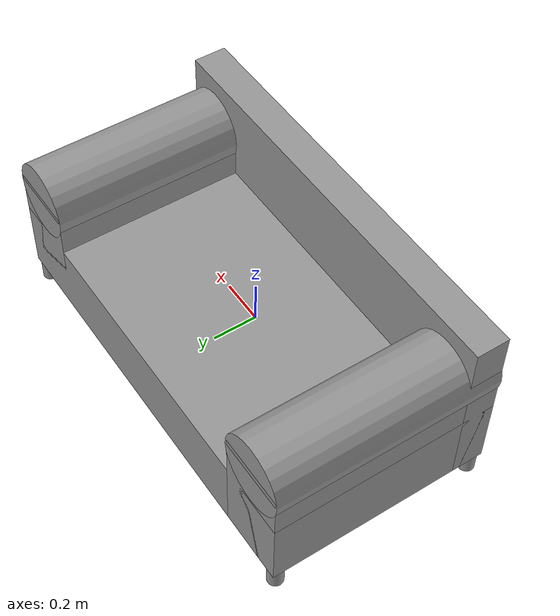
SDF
<?xml version='1.0'?>
<sdf version='1.6'>
  <model name='couch2.0'>
    <link name='link_0'>
      <pose frame=''>0 0.042624 -0.025032 0 -0 0</pose>
      <inertial>
        <mass>0.629351</mass>
        <inertia>
          <ixx>0.0582683</ixx>
          <ixy>0</ixy>
          <ixz>0</ixz>
          <iyy>0.192922</iyy>
          <iyz>0</iyz>
          <izz>0.239546</izz>
        </inertia>
        <pose frame=''>0 0 0 0 -0 0</pose>
      </inertial>
      <gravity>1</gravity>
      <self_collide>0</self_collide>
      <kinematic>0</kinematic>
      <visual name='visual'>
        <pose frame=''>0 0 0 0 -0 0</pose>
        <geometry>
          <box>
            <size>1.88878 1 0.33319</size>
          </box>
        </geometry>
        <material>
          <lighting>1</lighting>
          <script>
            <uri>file://media/materials/scripts/gazebo.material</uri>
            <name>Gazebo/Grey</name>
          </script>
          <shader type='pixel'>
            <normal_map>__default__</normal_map>
          </shader>
          <ambient>0.3 0.3 0.3 1</ambient>
          <diffuse>0.7 0.7 0.7 1</diffuse>
          <specular>0.01 0.01 0.01 1</specular>
          <emissive>0 0 0 1</emissive>
        </material>
        <transparency>0</transparency>
        <cast_shadows>1</cast_shadows>
      </visual>
      <collision name='collision'>
        <laser_retro>0</laser_retro>
        <max_contacts>10</max_contacts>
        <pose frame=''>0 0 0 0 -0 0</pose>
        <geometry>
          <box>
            <size>1.88878 1 0.33319</size>
          </box>
        </geometry>
        <surface>
          <friction>
            <ode>
              <mu>1</mu>
              <mu2>1</mu2>
              <fdir1>0 0 0</fdir1>
              <slip1>0</slip1>
              <slip2>0</slip2>
            </ode>
            <torsional>
              <coefficient>1</coefficient>
              <patch_radius>0</patch_radius>
              <surface_radius>0</surface_radius>
              <use_patch_radius>1</use_patch_radius>
              <ode>
                <slip>0</slip>
              </ode>
            </torsional>
          </friction>
          <bounce>
            <restitution_coefficient>0</restitution_coefficient>
            <threshold>1e+06</threshold>
          </bounce>
          <contact>
            <collide_without_contact>0</collide_without_contact>
            <collide_without_contact_bitmask>1</collide_without_contact_bitmask>
            <collide_bitmask>1</collide_bitmask>
            <ode>
              <soft_cfm>0</soft_cfm>
              <soft_erp>0.2</soft_erp>
              <kp>1e+13</kp>
              <kd>1</kd>
              <max_vel>0.01</max_vel>
              <min_depth>0</min_depth>
            </ode>
            <bullet>
              <split_impulse>1</split_impulse>
              <split_impulse_penetration_threshold>-0.01</split_impulse_penetration_threshold>
              <soft_cfm>0</soft_cfm>
              <soft_erp>0.2</soft_erp>
              <kp>1e+13</kp>
              <kd>1</kd>
            </bullet>
          </contact>
        </surface>
      </collision>
    </link>
    <link name='link_0_clone'>
      <pose frame=''>0 -0.383981 0.182545 0 -0 0</pose>
      <inertial>
        <mass>0.207466</mass>
        <inertia>
          <ixx>0.0100546</ixx>
          <ixy>0</ixy>
          <ixz>0</ixz>
          <iyy>0.0713599</iyy>
          <iyz>0</iyz>
          <izz>0.0620503</izz>
        </inertia>
        <pose frame=''>0 0 0 0 -0 0</pose>
      </inertial>
      <self_collide>0</self_collide>
      <kinematic>0</kinematic>
      <gravity>1</gravity>
      <visual name='visual'>
        <pose frame=''>0 0 0 0 -0 0</pose>
        <geometry>
          <box>
            <size>1.88878 0.146789 0.748345</size>
          </box>
        </geometry>
        <material>
          <lighting>1</lighting>
          <script>
            <uri>file://media/materials/scripts/gazebo.material</uri>
            <name>Gazebo/Grey</name>
          </script>
          <shader type='pixel'>
            <normal_map>__default__</normal_map>
          </shader>
          <ambient>0.3 0.3 0.3 1</ambient>
          <diffuse>0.7 0.7 0.7 1</diffuse>
          <specular>0.01 0.01 0.01 1</specular>
          <emissive>0 0 0 1</emissive>
        </material>
        <transparency>0</transparency>
        <cast_shadows>1</cast_shadows>
      </visual>
      <collision name='collision'>
        <laser_retro>0</laser_retro>
        <max_contacts>10</max_contacts>
        <pose frame=''>0 0 0 0 -0 0</pose>
        <geometry>
          <box>
            <size>1.88878 0.146789 0.748345</size>
          </box>
        </geometry>
        <surface>
          <friction>
            <ode>
              <mu>1</mu>
              <mu2>1</mu2>
              <fdir1>0 0 0</fdir1>
              <slip1>0</slip1>
              <slip2>0</slip2>
            </ode>
            <torsional>
              <coefficient>1</coefficient>
              <patch_radius>0</patch_radius>
              <surface_radius>0</surface_radius>
              <use_patch_radius>1</use_patch_radius>
              <ode>
                <slip>0</slip>
              </ode>
            </torsional>
          </friction>
          <bounce>
            <restitution_coefficient>0</restitution_coefficient>
            <threshold>1e+06</threshold>
          </bounce>
          <contact>
            <collide_without_contact>0</collide_without_contact>
            <collide_without_contact_bitmask>1</collide_without_contact_bitmask>
            <collide_bitmask>1</collide_bitmask>
            <ode>
              <soft_cfm>0</soft_cfm>
              <soft_erp>0.2</soft_erp>
              <kp>1e+13</kp>
              <kd>1</kd>
              <max_vel>0.01</max_vel>
              <min_depth>0</min_depth>
            </ode>
            <bullet>
              <split_impulse>1</split_impulse>
              <split_impulse_penetration_threshold>-0.01</split_impulse_penetration_threshold>
              <soft_cfm>0</soft_cfm>
              <soft_erp>0.2</soft_erp>
              <kp>1e+13</kp>
              <kd>1</kd>
            </bullet>
          </contact>
        </surface>
      </collision>
    </link>
    <link name='link_1'>
      <pose frame=''>-0.909335 -0.422322 -0.235214 0 -0 0</pose>
      <inertial>
        <mass>0.000500743</mass>
        <inertia>
          <ixx>5.85623e-07</ixx>
          <ixy>0</ixy>
          <ixz>0</ixz>
          <iyy>5.85623e-07</iyy>
          <iyz>0</iyz>
          <izz>3.07643e-07</izz>
        </inertia>
        <pose frame=''>0 0 0 0 -0 0</pose>
      </inertial>
      <visual name='visual'>
        <pose frame=''>0 0 0 0 -0 0</pose>
        <geometry>
          <cylinder>
            <radius>0.0350535</radius>
            <length>0.101724</length>
          </cylinder>
        </geometry>
        <material>
          <lighting>1</lighting>
          <script>
            <uri>file://media/materials/scripts/gazebo.material</uri>
            <name>Gazebo/Grey</name>
          </script>
          <shader type='pixel'/>
          <ambient>0.3 0.3 0.3 1</ambient>
          <diffuse>0.7 0.7 0.7 1</diffuse>
          <specular>0.01 0.01 0.01 1</specular>
          <emissive>0 0 0 1</emissive>
        </material>
        <transparency>0</transparency>
        <cast_shadows>1</cast_shadows>
      </visual>
      <collision name='collision'>
        <laser_retro>0</laser_retro>
        <max_contacts>10</max_contacts>
        <pose frame=''>0 0 0 0 -0 0</pose>
        <geometry>
          <cylinder>
            <radius>0.035053</radius>
            <length>0.101724</length>
          </cylinder>
        </geometry>
        <surface>
          <friction>
            <ode>
              <mu>1</mu>
              <mu2>1</mu2>
              <fdir1>0 0 0</fdir1>
              <slip1>0</slip1>
              <slip2>0</slip2>
            </ode>
            <torsional>
              <coefficient>1</coefficient>
              <patch_radius>0</patch_radius>
              <surface_radius>0</surface_radius>
              <use_patch_radius>1</use_patch_radius>
              <ode>
                <slip>0</slip>
              </ode>
            </torsional>
          </friction>
          <bounce>
            <restitution_coefficient>0</restitution_coefficient>
            <threshold>1e+06</threshold>
          </bounce>
          <contact>
            <collide_without_contact>0</collide_without_contact>
            <collide_without_contact_bitmask>1</collide_without_contact_bitmask>
            <collide_bitmask>1</collide_bitmask>
            <ode>
              <soft_cfm>0</soft_cfm>
              <soft_erp>0.2</soft_erp>
              <kp>1e+13</kp>
              <kd>1</kd>
              <max_vel>0.01</max_vel>
              <min_depth>0</min_depth>
            </ode>
            <bullet>
              <split_impulse>1</split_impulse>
              <split_impulse_penetration_threshold>-0.01</split_impulse_penetration_threshold>
              <soft_cfm>0</soft_cfm>
              <soft_erp>0.2</soft_erp>
              <kp>1e+13</kp>
              <kd>1</kd>
            </bullet>
          </contact>
        </surface>
      </collision>
    </link>
    <link name='link_1_clone'>
      <pose frame=''>-0.909335 0.507571 -0.235214 0 -0 0</pose>
      <inertial>
        <mass>0.000500743</mass>
        <inertia>
          <ixx>5.85623e-07</ixx>
          <ixy>0</ixy>
          <ixz>0</ixz>
          <iyy>5.85623e-07</iyy>
          <iyz>0</iyz>
          <izz>3.07643e-07</izz>
        </inertia>
        <pose frame=''>0 0 0 0 -0 0</pose>
      </inertial>
      <visual name='visual'>
        <pose frame=''>0 0 0 0 -0 0</pose>
        <geometry>
          <cylinder>
            <radius>0.0350535</radius>
            <length>0.101724</length>
          </cylinder>
        </geometry>
        <material>
          <lighting>1</lighting>
          <script>
            <uri>file://media/materials/scripts/gazebo.material</uri>
            <name>Gazebo/Grey</name>
          </script>
          <shader type='pixel'/>
          <ambient>0.3 0.3 0.3 1</ambient>
          <diffuse>0.7 0.7 0.7 1</diffuse>
          <specular>0.01 0.01 0.01 1</specular>
          <emissive>0 0 0 1</emissive>
        </material>
        <transparency>0</transparency>
        <cast_shadows>1</cast_shadows>
      </visual>
      <collision name='collision'>
        <laser_retro>0</laser_retro>
        <max_contacts>10</max_contacts>
        <pose frame=''>0 0 0 0 -0 0</pose>
        <geometry>
          <cylinder>
            <radius>0.035053</radius>
            <length>0.101724</length>
          </cylinder>
        </geometry>
        <surface>
          <friction>
            <ode>
              <mu>1</mu>
              <mu2>1</mu2>
              <fdir1>0 0 0</fdir1>
              <slip1>0</slip1>
              <slip2>0</slip2>
            </ode>
            <torsional>
              <coefficient>1</coefficient>
              <patch_radius>0</patch_radius>
              <surface_radius>0</surface_radius>
              <use_patch_radius>1</use_patch_radius>
              <ode>
                <slip>0</slip>
              </ode>
            </torsional>
          </friction>
          <bounce>
            <restitution_coefficient>0</restitution_coefficient>
            <threshold>1e+06</threshold>
          </bounce>
          <contact>
            <collide_without_contact>0</collide_without_contact>
            <collide_without_contact_bitmask>1</collide_without_contact_bitmask>
            <collide_bitmask>1</collide_bitmask>
            <ode>
              <soft_cfm>0</soft_cfm>
              <soft_erp>0.2</soft_erp>
              <kp>1e+13</kp>
              <kd>1</kd>
              <max_vel>0.01</max_vel>
              <min_depth>0</min_depth>
            </ode>
            <bullet>
              <split_impulse>1</split_impulse>
              <split_impulse_penetration_threshold>-0.01</split_impulse_penetration_threshold>
              <soft_cfm>0</soft_cfm>
              <soft_erp>0.2</soft_erp>
              <kp>1e+13</kp>
              <kd>1</kd>
            </bullet>
          </contact>
        </surface>
      </collision>
    </link>
    <link name='link_1_clone_0'>
      <pose frame=''>0.909335 -0.422322 -0.235214 0 -0 0</pose>
      <inertial>
        <mass>0.000500743</mass>
        <inertia>
          <ixx>5.85623e-07</ixx>
          <ixy>0</ixy>
          <ixz>0</ixz>
          <iyy>5.85623e-07</iyy>
          <iyz>0</iyz>
          <izz>3.07643e-07</izz>
        </inertia>
        <pose frame=''>0 0 0 0 -0 0</pose>
      </inertial>
      <visual name='visual'>
        <pose frame=''>0 0 0 0 -0 0</pose>
        <geometry>
          <cylinder>
            <radius>0.0350535</radius>
            <length>0.101724</length>
          </cylinder>
        </geometry>
        <material>
          <lighting>1</lighting>
          <script>
            <uri>file://media/materials/scripts/gazebo.material</uri>
            <name>Gazebo/Grey</name>
          </script>
          <shader type='pixel'/>
          <ambient>0.3 0.3 0.3 1</ambient>
          <diffuse>0.7 0.7 0.7 1</diffuse>
          <specular>0.01 0.01 0.01 1</specular>
          <emissive>0 0 0 1</emissive>
        </material>
        <transparency>0</transparency>
        <cast_shadows>1</cast_shadows>
      </visual>
      <collision name='collision'>
        <laser_retro>0</laser_retro>
        <max_contacts>10</max_contacts>
        <pose frame=''>0 0 0 0 -0 0</pose>
        <geometry>
          <cylinder>
            <radius>0.035053</radius>
            <length>0.101724</length>
          </cylinder>
        </geometry>
        <surface>
          <friction>
            <ode>
              <mu>1</mu>
              <mu2>1</mu2>
              <fdir1>0 0 0</fdir1>
              <slip1>0</slip1>
              <slip2>0</slip2>
            </ode>
            <torsional>
              <coefficient>1</coefficient>
              <patch_radius>0</patch_radius>
              <surface_radius>0</surface_radius>
              <use_patch_radius>1</use_patch_radius>
              <ode>
                <slip>0</slip>
              </ode>
            </torsional>
          </friction>
          <bounce>
            <restitution_coefficient>0</restitution_coefficient>
            <threshold>1e+06</threshold>
          </bounce>
          <contact>
            <collide_without_contact>0</collide_without_contact>
            <collide_without_contact_bitmask>1</collide_without_contact_bitmask>
            <collide_bitmask>1</collide_bitmask>
            <ode>
              <soft_cfm>0</soft_cfm>
              <soft_erp>0.2</soft_erp>
              <kp>1e+13</kp>
              <kd>1</kd>
              <max_vel>0.01</max_vel>
              <min_depth>0</min_depth>
            </ode>
            <bullet>
              <split_impulse>1</split_impulse>
              <split_impulse_penetration_threshold>-0.01</split_impulse_penetration_threshold>
              <soft_cfm>0</soft_cfm>
              <soft_erp>0.2</soft_erp>
              <kp>1e+13</kp>
              <kd>1</kd>
            </bullet>
          </contact>
        </surface>
      </collision>
    </link>
    <link name='link_1_clone_1'>
      <pose frame=''>0.909335 0.507571 -0.235214 0 -0 0</pose>
      <inertial>
        <mass>0.000500743</mass>
        <inertia>
          <ixx>5.85623e-07</ixx>
          <ixy>0</ixy>
          <ixz>0</ixz>
          <iyy>5.85623e-07</iyy>
          <iyz>0</iyz>
          <izz>3.07643e-07</izz>
        </inertia>
        <pose frame=''>0 0 0 0 -0 0</pose>
      </inertial>
      <visual name='visual'>
        <pose frame=''>0 0 0 0 -0 0</pose>
        <geometry>
          <cylinder>
            <radius>0.0350535</radius>
            <length>0.101724</length>
          </cylinder>
        </geometry>
        <material>
          <lighting>1</lighting>
          <script>
            <uri>file://media/materials/scripts/gazebo.material</uri>
            <name>Gazebo/Grey</name>
          </script>
          <shader type='pixel'/>
          <ambient>0.3 0.3 0.3 1</ambient>
          <diffuse>0.7 0.7 0.7 1</diffuse>
          <specular>0.01 0.01 0.01 1</specular>
          <emissive>0 0 0 1</emissive>
        </material>
        <transparency>0</transparency>
        <cast_shadows>1</cast_shadows>
      </visual>
      <collision name='collision'>
        <laser_retro>0</laser_retro>
        <max_contacts>10</max_contacts>
        <pose frame=''>0 0 0 0 -0 0</pose>
        <geometry>
          <cylinder>
            <radius>0.035053</radius>
            <length>0.101724</length>
          </cylinder>
        </geometry>
        <surface>
          <friction>
            <ode>
              <mu>1</mu>
              <mu2>1</mu2>
              <fdir1>0 0 0</fdir1>
              <slip1>0</slip1>
              <slip2>0</slip2>
            </ode>
            <torsional>
              <coefficient>1</coefficient>
              <patch_radius>0</patch_radius>
              <surface_radius>0</surface_radius>
              <use_patch_radius>1</use_patch_radius>
              <ode>
                <slip>0</slip>
              </ode>
            </torsional>
          </friction>
          <bounce>
            <restitution_coefficient>0</restitution_coefficient>
            <threshold>1e+06</threshold>
          </bounce>
          <contact>
            <collide_without_contact>0</collide_without_contact>
            <collide_without_contact_bitmask>1</collide_without_contact_bitmask>
            <collide_bitmask>1</collide_bitmask>
            <ode>
              <soft_cfm>0</soft_cfm>
              <soft_erp>0.2</soft_erp>
              <kp>1e+13</kp>
              <kd>1</kd>
              <max_vel>0.01</max_vel>
              <min_depth>0</min_depth>
            </ode>
            <bullet>
              <split_impulse>1</split_impulse>
              <split_impulse_penetration_threshold>-0.01</split_impulse_penetration_threshold>
              <soft_cfm>0</soft_cfm>
              <soft_erp>0.2</soft_erp>
              <kp>1e+13</kp>
              <kd>1</kd>
            </bullet>
          </contact>
        </surface>
      </collision>
    </link>
    <link name='link_3'>
      <pose frame=''>-0.787536 0.042624 0.075794 0 -0 0</pose>
      <inertial>
        <mass>0.167781</mass>
        <inertia>
          <ixx>0.0179813</ixx>
          <ixy>0</ixy>
          <ixz>0</ixz>
          <iyy>0.0053755</iyy>
          <iyz>0</iyz>
          <izz>0.0153577</izz>
        </inertia>
        <pose frame=''>0 0 0 0 -0 0</pose>
      </inertial>
      <visual name='visual'>
        <pose frame=''>0 0 0 0 -0 0</pose>
        <geometry>
          <box>
            <size>0.313705 1 0.534841</size>
          </box>
        </geometry>
        <material>
          <lighting>1</lighting>
          <script>
            <uri>file://media/materials/scripts/gazebo.material</uri>
            <name>Gazebo/Grey</name>
          </script>
          <shader type='pixel'/>
          <ambient>0.3 0.3 0.3 1</ambient>
          <diffuse>0.7 0.7 0.7 1</diffuse>
          <specular>0.01 0.01 0.01 1</specular>
          <emissive>0 0 0 1</emissive>
        </material>
        <transparency>0</transparency>
        <cast_shadows>1</cast_shadows>
      </visual>
      <collision name='collision'>
        <laser_retro>0</laser_retro>
        <max_contacts>10</max_contacts>
        <pose frame=''>0 0 0 0 -0 0</pose>
        <geometry>
          <box>
            <size>0.313705 1 0.534841</size>
          </box>
        </geometry>
        <surface>
          <friction>
            <ode>
              <mu>1</mu>
              <mu2>1</mu2>
              <fdir1>0 0 0</fdir1>
              <slip1>0</slip1>
              <slip2>0</slip2>
            </ode>
            <torsional>
              <coefficient>1</coefficient>
              <patch_radius>0</patch_radius>
              <surface_radius>0</surface_radius>
              <use_patch_radius>1</use_patch_radius>
              <ode>
                <slip>0</slip>
              </ode>
            </torsional>
          </friction>
          <bounce>
            <restitution_coefficient>0</restitution_coefficient>
            <threshold>1e+06</threshold>
          </bounce>
          <contact>
            <collide_without_contact>0</collide_without_contact>
            <collide_without_contact_bitmask>1</collide_without_contact_bitmask>
            <collide_bitmask>1</collide_bitmask>
            <ode>
              <soft_cfm>0</soft_cfm>
              <soft_erp>0.2</soft_erp>
              <kp>1e+13</kp>
              <kd>1</kd>
              <max_vel>0.01</max_vel>
              <min_depth>0</min_depth>
            </ode>
            <bullet>
              <split_impulse>1</split_impulse>
              <split_impulse_penetration_threshold>-0.01</split_impulse_penetration_threshold>
              <soft_cfm>0</soft_cfm>
              <soft_erp>0.2</soft_erp>
              <kp>1e+13</kp>
              <kd>1</kd>
            </bullet>
          </contact>
        </surface>
      </collision>
    </link>
    <link name='link_3_clone'>
      <pose frame=''>0.787536 0.042624 0.075794 0 -0 0</pose>
      <inertial>
        <mass>0.163893</mass>
        <inertia>
          <ixx>0.0173856</ixx>
          <ixy>0</ixy>
          <ixz>0</ixz>
          <iyy>0.00507196</iyy>
          <iyz>0</iyz>
          <izz>0.0150018</izz>
        </inertia>
        <pose frame=''>0 0 0 0 -0 0</pose>
      </inertial>
      <gravity>1</gravity>
      <self_collide>0</self_collide>
      <kinematic>0</kinematic>
      <visual name='visual'>
        <pose frame=''>0 0 0 0 -0 0</pose>
        <geometry>
          <box>
            <size>0.313705 1 0.522447</size>
          </box>
        </geometry>
        <material>
          <lighting>1</lighting>
          <script>
            <uri>file://media/materials/scripts/gazebo.material</uri>
            <name>Gazebo/Grey</name>
          </script>
          <shader type='pixel'>
            <normal_map>__default__</normal_map>
          </shader>
          <ambient>0.3 0.3 0.3 1</ambient>
          <diffuse>0.7 0.7 0.7 1</diffuse>
          <specular>0.01 0.01 0.01 1</specular>
          <emissive>0 0 0 1</emissive>
        </material>
        <transparency>0</transparency>
        <cast_shadows>1</cast_shadows>
      </visual>
      <collision name='collision'>
        <laser_retro>0</laser_retro>
        <max_contacts>10</max_contacts>
        <pose frame=''>0 0 0 0 -0 0</pose>
        <geometry>
          <box>
            <size>0.313705 1 0.522447</size>
          </box>
        </geometry>
        <surface>
          <friction>
            <ode>
              <mu>1</mu>
              <mu2>1</mu2>
              <fdir1>0 0 0</fdir1>
              <slip1>0</slip1>
              <slip2>0</slip2>
            </ode>
            <torsional>
              <coefficient>1</coefficient>
              <patch_radius>0</patch_radius>
              <surface_radius>0</surface_radius>
              <use_patch_radius>1</use_patch_radius>
              <ode>
                <slip>0</slip>
              </ode>
            </torsional>
          </friction>
          <bounce>
            <restitution_coefficient>0</restitution_coefficient>
            <threshold>1e+06</threshold>
          </bounce>
          <contact>
            <collide_without_contact>0</collide_without_contact>
            <collide_without_contact_bitmask>1</collide_without_contact_bitmask>
            <collide_bitmask>1</collide_bitmask>
            <ode>
              <soft_cfm>0</soft_cfm>
              <soft_erp>0.2</soft_erp>
              <kp>1e+13</kp>
              <kd>1</kd>
              <max_vel>0.01</max_vel>
              <min_depth>0</min_depth>
            </ode>
            <bullet>
              <split_impulse>1</split_impulse>
              <split_impulse_penetration_threshold>-0.01</split_impulse_penetration_threshold>
              <soft_cfm>0</soft_cfm>
              <soft_erp>0.2</soft_erp>
              <kp>1e+13</kp>
              <kd>1</kd>
            </bullet>
          </contact>
        </surface>
      </collision>
    </link>
    <link name='link_4'>
      <pose frame=''>0.787536 0.042624 0.315876 1.573 -0 0</pose>
      <inertial>
        <mass>0.110343</mass>
        <inertia>
          <ixx>0.00995618</ixx>
          <ixy>0</ixy>
          <ixz>0</ixz>
          <iyy>0.00995618</iyy>
          <iyz>0</iyz>
          <izz>0.00152191</izz>
        </inertia>
        <pose frame=''>0 0 0 0 1.51 0</pose>
      </inertial>
      <gravity>1</gravity>
      <self_collide>0</self_collide>
      <kinematic>0</kinematic>
      <visual name='visual'>
        <pose frame=''>0 0 0 0 -0 0</pose>
        <geometry>
          <cylinder>
            <radius>0.166088</radius>
            <length>1</length>
          </cylinder>
        </geometry>
        <material>
          <lighting>1</lighting>
          <script>
            <uri>file://media/materials/scripts/gazebo.material</uri>
            <name>Gazebo/Grey</name>
          </script>
          <shader type='pixel'>
            <normal_map>__default__</normal_map>
          </shader>
          <ambient>0.3 0.3 0.3 1</ambient>
          <diffuse>0.7 0.7 0.7 1</diffuse>
          <specular>0.01 0.01 0.01 1</specular>
          <emissive>0 0 0 1</emissive>
        </material>
        <transparency>0</transparency>
        <cast_shadows>1</cast_shadows>
      </visual>
      <collision name='collision'>
        <laser_retro>0</laser_retro>
        <max_contacts>10</max_contacts>
        <pose frame=''>0 0 0 0 -0 0</pose>
        <geometry>
          <cylinder>
            <radius>0.166088</radius>
            <length>1</length>
          </cylinder>
        </geometry>
        <surface>
          <friction>
            <ode>
              <mu>1</mu>
              <mu2>1</mu2>
              <fdir1>0 0 0</fdir1>
              <slip1>0</slip1>
              <slip2>0</slip2>
            </ode>
            <torsional>
              <coefficient>1</coefficient>
              <patch_radius>0</patch_radius>
              <surface_radius>0</surface_radius>
              <use_patch_radius>1</use_patch_radius>
              <ode>
                <slip>0</slip>
              </ode>
            </torsional>
          </friction>
          <bounce>
            <restitution_coefficient>0</restitution_coefficient>
            <threshold>1e+06</threshold>
          </bounce>
          <contact>
            <collide_without_contact>0</collide_without_contact>
            <collide_without_contact_bitmask>1</collide_without_contact_bitmask>
            <collide_bitmask>1</collide_bitmask>
            <ode>
              <soft_cfm>0</soft_cfm>
              <soft_erp>0.2</soft_erp>
              <kp>1e+13</kp>
              <kd>1</kd>
              <max_vel>0.01</max_vel>
              <min_depth>0</min_depth>
            </ode>
            <bullet>
              <split_impulse>1</split_impulse>
              <split_impulse_penetration_threshold>-0.01</split_impulse_penetration_threshold>
              <soft_cfm>0</soft_cfm>
              <soft_erp>0.2</soft_erp>
              <kp>1e+13</kp>
              <kd>1</kd>
            </bullet>
          </contact>
        </surface>
      </collision>
    </link>
    <link name='link_4_clone'>
      <pose frame=''>-0.787536 0.042624 0.315877 1.573 -0 0</pose>
      <inertial>
        <mass>0.110343</mass>
        <inertia>
          <ixx>0.00995618</ixx>
          <ixy>0</ixy>
          <ixz>0</ixz>
          <iyy>0.00995618</iyy>
          <iyz>0</iyz>
          <izz>0.00152191</izz>
        </inertia>
        <pose frame=''>0 0 0 0 1.51 0</pose>
      </inertial>
      <self_collide>0</self_collide>
      <kinematic>0</kinematic>
      <visual name='visual'>
        <pose frame=''>0 0 0 0 -0 0</pose>
        <geometry>
          <cylinder>
            <radius>0.166088</radius>
            <length>1</length>
          </cylinder>
        </geometry>
        <material>
          <lighting>1</lighting>
          <script>
            <uri>file://media/materials/scripts/gazebo.material</uri>
            <name>Gazebo/Grey</name>
          </script>
          <shader type='pixel'>
            <normal_map>__default__</normal_map>
          </shader>
          <ambient>0.3 0.3 0.3 1</ambient>
          <diffuse>0.7 0.7 0.7 1</diffuse>
          <specular>0.01 0.01 0.01 1</specular>
          <emissive>0 0 0 1</emissive>
        </material>
        <transparency>0</transparency>
        <cast_shadows>1</cast_shadows>
      </visual>
      <collision name='collision'>
        <laser_retro>0</laser_retro>
        <max_contacts>10</max_contacts>
        <pose frame=''>0 0 0 0 -0 0</pose>
        <geometry>
          <cylinder>
            <radius>0.166088</radius>
            <length>1</length>
          </cylinder>
        </geometry>
        <surface>
          <friction>
            <ode>
              <mu>1</mu>
              <mu2>1</mu2>
              <fdir1>0 0 0</fdir1>
              <slip1>0</slip1>
              <slip2>0</slip2>
            </ode>
            <torsional>
              <coefficient>1</coefficient>
              <patch_radius>0</patch_radius>
              <surface_radius>0</surface_radius>
              <use_patch_radius>1</use_patch_radius>
              <ode>
                <slip>0</slip>
              </ode>
            </torsional>
          </friction>
          <bounce>
            <restitution_coefficient>0</restitution_coefficient>
            <threshold>1e+06</threshold>
          </bounce>
          <contact>
            <collide_without_contact>0</collide_without_contact>
            <collide_without_contact_bitmask>1</collide_without_contact_bitmask>
            <collide_bitmask>1</collide_bitmask>
            <ode>
              <soft_cfm>0</soft_cfm>
              <soft_erp>0.2</soft_erp>
              <kp>1e+13</kp>
              <kd>1</kd>
              <max_vel>0.01</max_vel>
              <min_depth>0</min_depth>
            </ode>
            <bullet>
              <split_impulse>1</split_impulse>
              <split_impulse_penetration_threshold>-0.01</split_impulse_penetration_threshold>
              <soft_cfm>0</soft_cfm>
              <soft_erp>0.2</soft_erp>
              <kp>1e+13</kp>
              <kd>1</kd>
            </bullet>
          </contact>
        </surface>
      </collision>
    </link>
    <joint name='link_0_JOINT_0' type='fixed'>
      <parent>link_0</parent>
      <child>link_1</child>
      <pose frame=''>0 0 0 0 -0 0</pose>
      <physics>
        <ode>
          <limit>
            <cfm>0</cfm>
            <erp>0.2</erp>
          </limit>
          <suspension>
            <cfm>0</cfm>
            <erp>0.2</erp>
          </suspension>
        </ode>
      </physics>
    </joint>
    <joint name='link_0_JOINT_1' type='fixed'>
      <parent>link_0</parent>
      <child>link_1_clone</child>
      <pose frame=''>0 0 0 0 -0 0</pose>
      <physics>
        <ode>
          <limit>
            <cfm>0</cfm>
            <erp>0.2</erp>
          </limit>
          <suspension>
            <cfm>0</cfm>
            <erp>0.2</erp>
          </suspension>
        </ode>
      </physics>
    </joint>
    <joint name='link_0_JOINT_2' type='fixed'>
      <parent>link_0</parent>
      <child>link_1_clone_0</child>
      <pose frame=''>0 0 0 0 -0 0</pose>
      <physics>
        <ode>
          <limit>
            <cfm>0</cfm>
            <erp>0.2</erp>
          </limit>
          <suspension>
            <cfm>0</cfm>
            <erp>0.2</erp>
          </suspension>
        </ode>
      </physics>
    </joint>
    <joint name='link_0_JOINT_3' type='fixed'>
      <parent>link_0</parent>
      <child>link_1_clone_1</child>
      <pose frame=''>0 0 0 0 -0 0</pose>
      <physics>
        <ode>
          <limit>
            <cfm>0</cfm>
            <erp>0.2</erp>
          </limit>
          <suspension>
            <cfm>0</cfm>
            <erp>0.2</erp>
          </suspension>
        </ode>
      </physics>
    </joint>
    <joint name='link_0_JOINT_4' type='fixed'>
      <parent>link_0</parent>
      <child>link_3</child>
      <pose frame=''>0 0 0 0 -0 0</pose>
      <physics>
        <ode>
          <limit>
            <cfm>0</cfm>
            <erp>0.2</erp>
          </limit>
          <suspension>
            <cfm>0</cfm>
            <erp>0.2</erp>
          </suspension>
        </ode>
      </physics>
    </joint>
    <joint name='link_0_JOINT_5' type='fixed'>
      <parent>link_0</parent>
      <child>link_3_clone</child>
      <pose frame=''>0 0 0 0 -0 0</pose>
      <physics>
        <ode>
          <limit>
            <cfm>0</cfm>
            <erp>0.2</erp>
          </limit>
          <suspension>
            <cfm>0</cfm>
            <erp>0.2</erp>
          </suspension>
        </ode>
      </physics>
    </joint>
    <joint name='link_0_JOINT_9' type='fixed'>
      <parent>link_0</parent>
      <child>link_0_clone</child>
      <pose frame=''>0 0 0 0 -0 0</pose>
      <physics>
        <ode>
          <limit>
            <cfm>0</cfm>
            <erp>0.2</erp>
          </limit>
          <suspension>
            <cfm>0</cfm>
            <erp>0.2</erp>
          </suspension>
        </ode>
      </physics>
    </joint>
    <joint name='link_4_JOINT_7' type='fixed'>
      <parent>link_4</parent>
      <child>link_3_clone</child>
      <pose frame=''>0 0 0 0 -0 0</pose>
      <physics>
        <ode>
          <limit>
            <cfm>0</cfm>
            <erp>0.2</erp>
          </limit>
          <suspension>
            <cfm>0</cfm>
            <erp>0.2</erp>
          </suspension>
        </ode>
      </physics>
    </joint>
    <joint name='link_4_clone_JOINT_8' type='fixed'>
      <parent>link_3</parent>
      <child>link_4_clone</child>
      <pose frame=''>0 0 0 0 -0 0</pose>
      <physics>
        <ode>
          <limit>
            <cfm>0</cfm>
            <erp>0.2</erp>
          </limit>
          <suspension>
            <cfm>0</cfm>
            <erp>0.2</erp>
          </suspension>
        </ode>
      </physics>
    </joint>
    <static>0</static>
    <allow_auto_disable>1</allow_auto_disable>
  </model>
</sdf>
